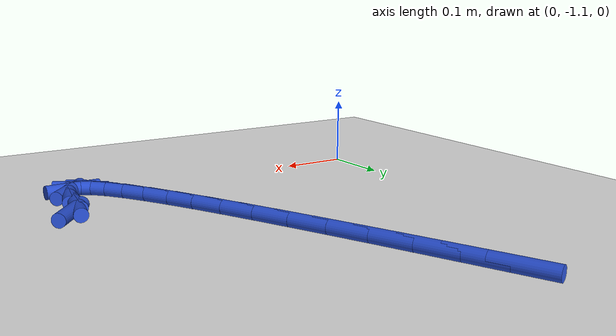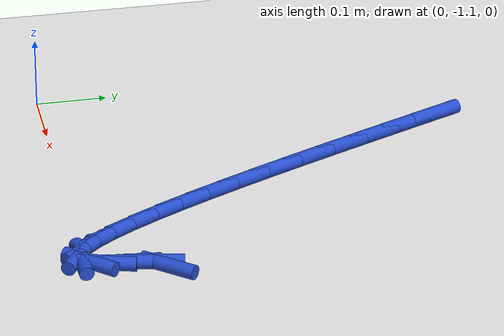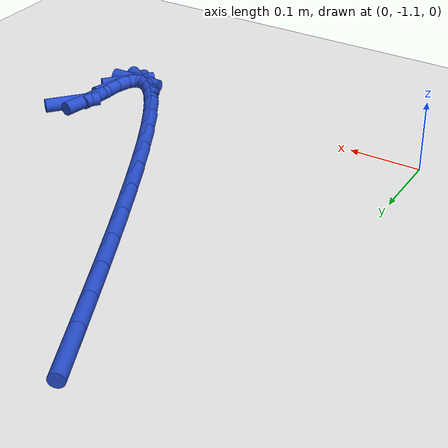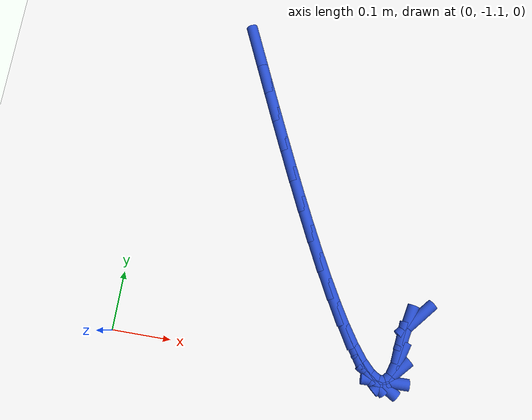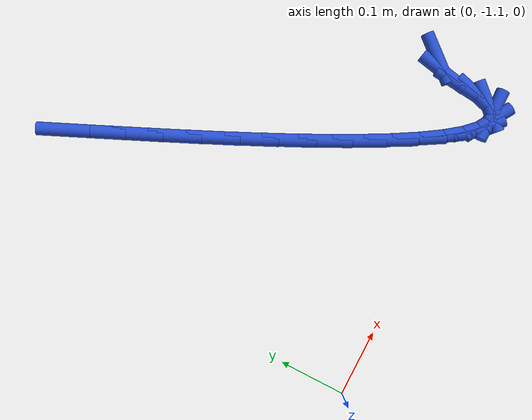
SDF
<sdf version="1.6">
 <world name="default">
  <model name="ground_plane">
   <static>1</static>
   <link name="link">
    <collision name="collision">
     <geometry><plane><normal>0 0 1</normal><size>100 100</size></plane></geometry>
     <surface><friction><ode><mu>100</mu><mu2>50</mu2></ode></friction></surface>
    </collision>
    <visual name="visual">
     <cast_shadows>0</cast_shadows>
     <geometry><plane><normal>0 0 1</normal><size>100 100</size></plane></geometry>
     <material>
      <script><uri>file://media/materials/scripts/gazebo.material</uri><name>Gazebo/WhiteGlow</name></script>
     </material>
    </visual>
   </link>
  </model>
  <model name="line">
   <link name="link_214">
    <pose>0.5044165337841598 -0.9992928272288687 0.01 0 1.57 0.8657548782660479</pose>
    <collision name="collision">
     <geometry><cylinder><radius>0.01</radius><length>0.08</length></cylinder></geometry>
    </collision>
    <visual name="visual">
     <material>
      <script><name>Gazebo/Blue</name><uri>file://media/materials/scripts/gazebo.material</uri></script>
     </material>
     <geometry><cylinder><radius>0.01</radius><length>0.08</length></cylinder></geometry>
    </visual>
   </link>
   <link name="link_215">
    <pose>0.49050737036029723 -1.015638408992205 0.01 0 1.57 1.3744305526521337</pose>
    <collision name="collision">
     <geometry><cylinder><radius>0.01</radius><length>0.08</length></cylinder></geometry>
    </collision>
    <visual name="visual">
     <material>
      <script><name>Gazebo/Blue</name><uri>file://media/materials/scripts/gazebo.material</uri></script>
     </material>
     <geometry><cylinder><radius>0.01</radius><length>0.08</length></cylinder></geometry>
    </visual>
   </link>
   <link name="link_216">
    <pose>0.484547687493375 -1.045597216337782 0.01 0 1.57 1.470865737828831</pose>
    <collision name="collision">
     <geometry><cylinder><radius>0.01</radius><length>0.08</length></cylinder></geometry>
    </collision>
    <visual name="visual">
     <material>
      <script><name>Gazebo/Blue</name><uri>file://media/materials/scripts/gazebo.material</uri></script>
     </material>
     <geometry><cylinder><radius>0.01</radius><length>0.08</length></cylinder></geometry>
    </visual>
   </link>
   <link name="link_217">
    <pose>0.4813658754235306 -1.0773313802513733 0.01 0 1.57 1.2766348111835992</pose>
    <collision name="collision">
     <geometry><cylinder><radius>0.01</radius><length>0.08</length></cylinder></geometry>
    </collision>
    <visual name="visual">
     <material>
      <script><name>Gazebo/Blue</name><uri>file://media/materials/scripts/gazebo.material</uri></script>
     </material>
     <geometry><cylinder><radius>0.01</radius><length>0.08</length></cylinder></geometry>
    </visual>
   </link>
   <link name="link_218">
    <pose>0.47513575389754964 -1.0978961938172247 0.01 0 1.57 0.829534013948218</pose>
    <collision name="collision">
     <geometry><cylinder><radius>0.01</radius><length>0.08</length></cylinder></geometry>
    </collision>
    <visual name="visual">
     <material>
      <script><name>Gazebo/Blue</name><uri>file://media/materials/scripts/gazebo.material</uri></script>
     </material>
     <geometry><cylinder><radius>0.01</radius><length>0.08</length></cylinder></geometry>
    </visual>
   </link>
   <link name="link_219">
    <pose>0.46600314230836354 -1.1078727529777264 0.01 0 1.57 0.019212429063343108</pose>
    <collision name="collision">
     <geometry><cylinder><radius>0.01</radius><length>0.08</length></cylinder></geometry>
    </collision>
    <visual name="visual">
     <material>
      <script><name>Gazebo/Blue</name><uri>file://media/materials/scripts/gazebo.material</uri></script>
     </material>
     <geometry><cylinder><radius>0.01</radius><length>0.08</length></cylinder></geometry>
    </visual>
   </link>
   <link name="link_220">
    <pose>0.45422757111584233 -1.1080990181441004 0.01 0 1.57 -0.5502623368446696</pose>
    <collision name="collision">
     <geometry><cylinder><radius>0.01</radius><length>0.08</length></cylinder></geometry>
    </collision>
    <visual name="visual">
     <material>
      <script><name>Gazebo/Blue</name><uri>file://media/materials/scripts/gazebo.material</uri></script>
     </material>
     <geometry><cylinder><radius>0.01</radius><length>0.08</length></cylinder></geometry>
    </visual>
   </link>
   <link name="link_221">
    <pose>0.440068570779857 -1.0994129497275695 0.01 0 1.57 -0.7998491637329723</pose>
    <collision name="collision">
     <geometry><cylinder><radius>0.01</radius><length>0.08</length></cylinder></geometry>
    </collision>
    <visual name="visual">
     <material>
      <script><name>Gazebo/Blue</name><uri>file://media/materials/scripts/gazebo.material</uri></script>
     </material>
     <geometry><cylinder><radius>0.01</radius><length>0.08</length></cylinder></geometry>
    </visual>
   </link>
   <link name="link_222">
    <pose>0.42378567176027765 -1.0826525081393545 0.01 0 1.57 -0.9233165842452173</pose>
    <collision name="collision">
     <geometry><cylinder><radius>0.01</radius><length>0.08</length></cylinder></geometry>
    </collision>
    <visual name="visual">
     <material>
      <script><name>Gazebo/Blue</name><uri>file://media/materials/scripts/gazebo.material</uri></script>
     </material>
     <geometry><cylinder><radius>0.01</radius><length>0.08</length></cylinder></geometry>
    </visual>
   </link>
   <link name="link_223">
    <pose>0.4056384045169749 -1.0586556537906784 0.01 0 1.57 -0.9945331552129664</pose>
    <collision name="collision">
     <geometry><cylinder><radius>0.01</radius><length>0.08</length></cylinder></geometry>
    </collision>
    <visual name="visual">
     <material>
      <script><name>Gazebo/Blue</name><uri>file://media/materials/scripts/gazebo.material</uri></script>
     </material>
     <geometry><cylinder><radius>0.01</radius><length>0.08</length></cylinder></geometry>
    </visual>
   </link>
   <link name="link_224">
    <pose>0.3858862995098192 -1.0282603470927625 0.01 0 1.57 -1.0401692575978734</pose>
    <collision name="collision">
     <geometry><cylinder><radius>0.01</radius><length>0.08</length></cylinder></geometry>
    </collision>
    <visual name="visual">
     <material>
      <script><name>Gazebo/Blue</name><uri>file://media/materials/scripts/gazebo.material</uri></script>
     </material>
     <geometry><cylinder><radius>0.01</radius><length>0.08</length></cylinder></geometry>
    </visual>
   </link>
   <link name="link_225">
    <pose>0.364788887198681 -0.9923045484568294 0.01 0 1.57 -1.0715441693216543</pose>
    <collision name="collision">
     <geometry><cylinder><radius>0.01</radius><length>0.08</length></cylinder></geometry>
    </collision>
    <visual name="visual">
     <material>
      <script><name>Gazebo/Blue</name><uri>file://media/materials/scripts/gazebo.material</uri></script>
     </material>
     <geometry><cylinder><radius>0.01</radius><length>0.08</length></cylinder></geometry>
    </visual>
   </link>
   <link name="link_226">
    <pose>0.34260569804343083 -0.9516262182941009 0.01 0 1.57 -1.0941653950210346</pose>
    <collision name="collision">
     <geometry><cylinder><radius>0.01</radius><length>0.08</length></cylinder></geometry>
    </collision>
    <visual name="visual">
     <material>
      <script><name>Gazebo/Blue</name><uri>file://media/materials/scripts/gazebo.material</uri></script>
     </material>
     <geometry><cylinder><radius>0.01</radius><length>0.08</length></cylinder></geometry>
    </visual>
   </link>
   <link name="link_227">
    <pose>0.31959626250393924 -0.9070633170157992 0.01 0 1.57 -1.1109974161592147</pose>
    <collision name="collision">
     <geometry><cylinder><radius>0.01</radius><length>0.08</length></cylinder></geometry>
    </collision>
    <visual name="visual">
     <material>
      <script><name>Gazebo/Blue</name><uri>file://media/materials/scripts/gazebo.material</uri></script>
     </material>
     <geometry><cylinder><radius>0.01</radius><length>0.08</length></cylinder></geometry>
    </visual>
   </link>
   <link name="link_228">
    <pose>0.29602011104007664 -0.8594538050331464 0.01 0 1.57 -1.1237557890440235</pose>
    <collision name="collision">
     <geometry><cylinder><radius>0.01</radius><length>0.08</length></cylinder></geometry>
    </collision>
    <visual name="visual">
     <material>
      <script><name>Gazebo/Blue</name><uri>file://media/materials/scripts/gazebo.material</uri></script>
     </material>
     <geometry><cylinder><radius>0.01</radius><length>0.08</length></cylinder></geometry>
    </visual>
   </link>
   <link name="link_229">
    <pose>0.27213677411171355 -0.8096356427573644 0.01 0 1.57 -1.133481815745743</pose>
    <collision name="collision">
     <geometry><cylinder><radius>0.01</radius><length>0.08</length></cylinder></geometry>
    </collision>
    <visual name="visual">
     <material>
      <script><name>Gazebo/Blue</name><uri>file://media/materials/scripts/gazebo.material</uri></script>
     </material>
     <geometry><cylinder><radius>0.01</radius><length>0.08</length></cylinder></geometry>
    </visual>
   </link>
   <link name="link_230">
    <pose>0.24820578217872027 -0.758446790599675 0.01 0 1.57 -1.1408201004827196</pose>
    <collision name="collision">
     <geometry><cylinder><radius>0.01</radius><length>0.08</length></cylinder></geometry>
    </collision>
    <visual name="visual">
     <material>
      <script><name>Gazebo/Blue</name><uri>file://media/materials/scripts/gazebo.material</uri></script>
     </material>
     <geometry><cylinder><radius>0.01</radius><length>0.08</length></cylinder></geometry>
    </visual>
   </link>
   <link name="link_231">
    <pose>0.22448666570096756 -0.7067252089713011 0.01 0 1.57 -1.1461590050068389</pose>
    <collision name="collision">
     <geometry><cylinder><radius>0.01</radius><length>0.08</length></cylinder></geometry>
    </collision>
    <visual name="visual">
     <material>
      <script><name>Gazebo/Blue</name><uri>file://media/materials/scripts/gazebo.material</uri></script>
     </material>
     <geometry><cylinder><radius>0.01</radius><length>0.08</length></cylinder></geometry>
    </visual>
   </link>
   <link name="link_232">
    <pose>0.20123895513832574 -0.6553088582834636 0.01 0 1.57 -1.1496996419612098</pose>
    <collision name="collision">
     <geometry><cylinder><radius>0.01</radius><length>0.08</length></cylinder></geometry>
    </collision>
    <visual name="visual">
     <material>
      <script><name>Gazebo/Blue</name><uri>file://media/materials/scripts/gazebo.material</uri></script>
     </material>
     <geometry><cylinder><radius>0.01</radius><length>0.08</length></cylinder></geometry>
    </visual>
   </link>
   <link name="link_233">
    <pose>0.17872218095066525 -0.6050356989473854 0.01 0 1.57 -1.1514798149807257</pose>
    <collision name="collision">
     <geometry><cylinder><radius>0.01</radius><length>0.08</length></cylinder></geometry>
    </collision>
    <visual name="visual">
     <material>
      <script><name>Gazebo/Blue</name><uri>file://media/materials/scripts/gazebo.material</uri></script>
     </material>
     <geometry><cylinder><radius>0.01</radius><length>0.08</length></cylinder></geometry>
    </visual>
   </link>
   <link name="link_234">
    <pose>0.1571958735978567 -0.5567436913742884 0.01 0 1.57 -1.1513581807168713</pose>
    <collision name="collision">
     <geometry><cylinder><radius>0.01</radius><length>0.08</length></cylinder></geometry>
    </collision>
    <visual name="visual">
     <material>
      <script><name>Gazebo/Blue</name><uri>file://media/materials/scripts/gazebo.material</uri></script>
     </material>
     <geometry><cylinder><radius>0.01</radius><length>0.08</length></cylinder></geometry>
    </visual>
   </link>
  </model>
 </world>
</sdf>
